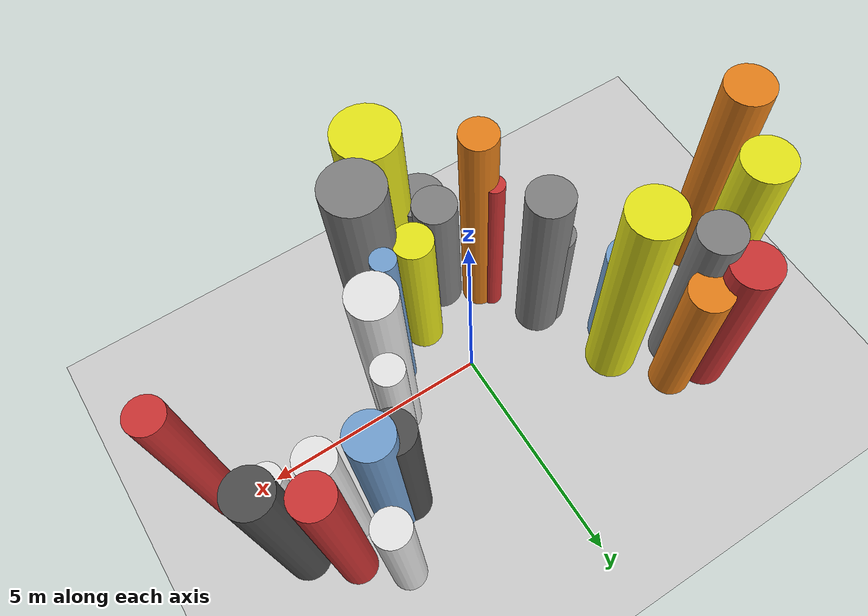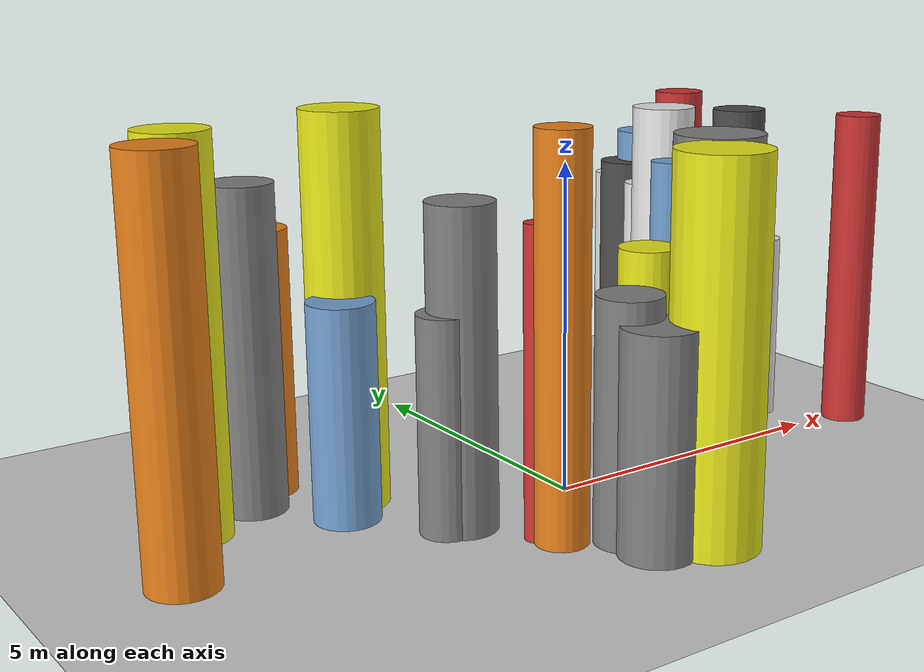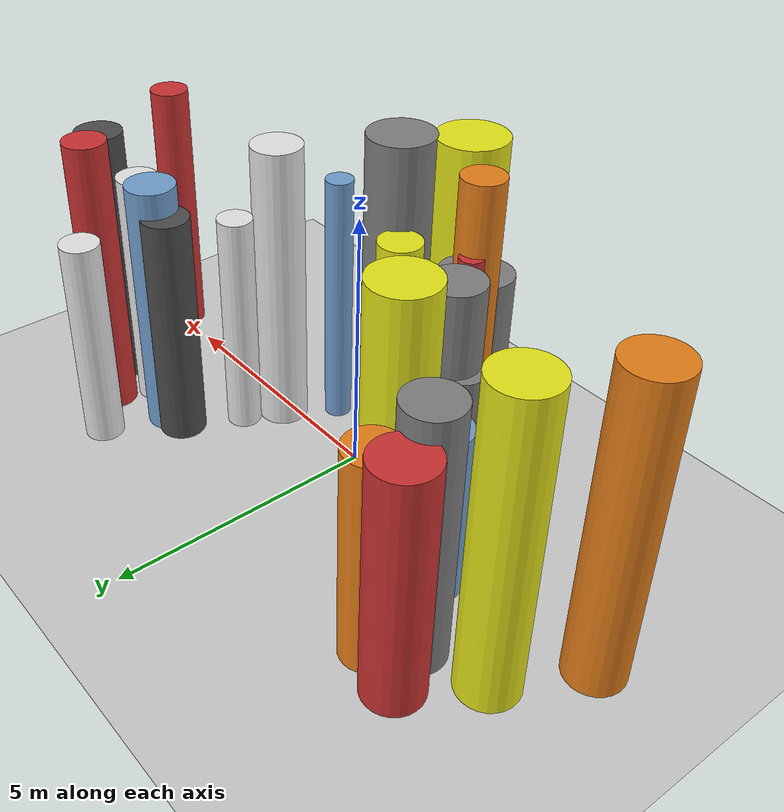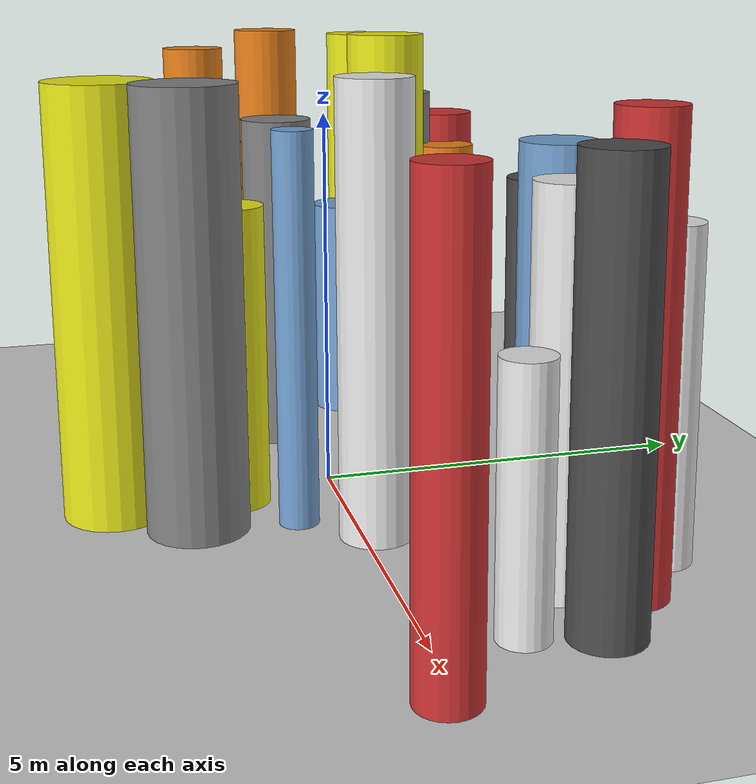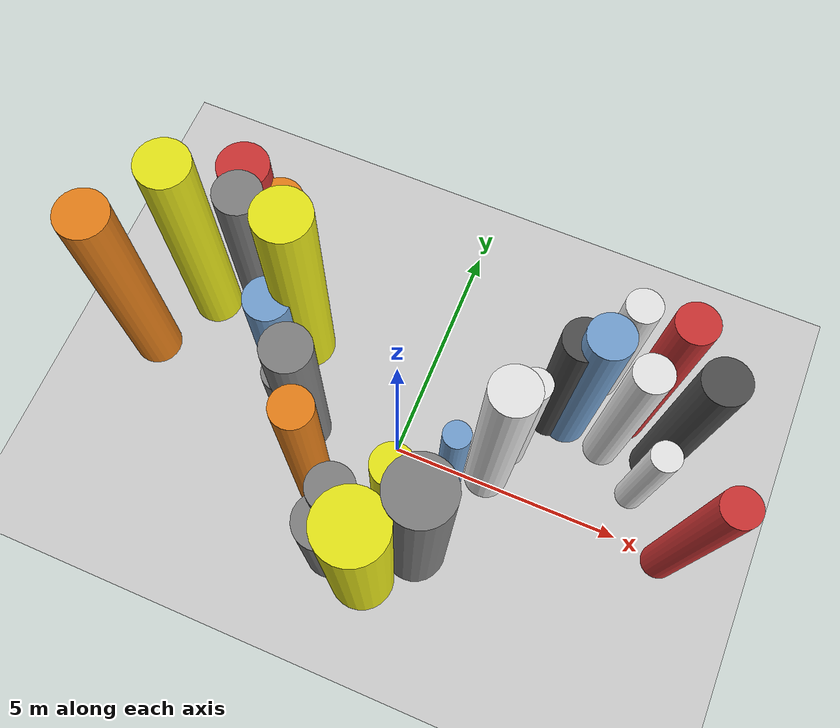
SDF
<?xml version='1.0'?>
<sdf version='1.6'>
  <world name='routeA_rl_v1__dense_recovery__rl_train__s_turn_multi_obstacle__000092'>
    <!-- Sun light -->
    <light name='sun' type='directional'>
      <cast_shadows>1</cast_shadows>
      <pose>0 0 10 0 0 0</pose>
      <diffuse>0.8 0.8 0.8 1</diffuse>
      <specular>0.2 0.2 0.2 1</specular>
      <attenuation>
        <range>1000</range>
        <constant>0.9</constant>
        <linear>0.01</linear>
        <quadratic>0.001</quadratic>
      </attenuation>
      <direction>-0.5 0.1 -0.9</direction>
    </light>

    <!-- Ground plane -->
    <model name='ground_plane'>
      <static>1</static>
      <link name='link'>
        <collision name='collision'>
          <geometry>
            <plane>
              <normal>0 0 1</normal>
              <size>100 100</size>
            </plane>
          </geometry>
          <surface>
            <contact>
              <collide_bitmask>65535</collide_bitmask>
              <ode/>
            </contact>
            <friction>
              <ode>
                <mu>100</mu>
                <mu2>50</mu2>
              </ode>
              <torsional><ode/></torsional>
            </friction>
            <bounce/>
          </surface>
          <max_contacts>10</max_contacts>
        </collision>
        <visual name='visual'>
          <cast_shadows>0</cast_shadows>
          <geometry>
            <plane>
              <normal>0 0 1</normal>
              <size>100 100</size>
            </plane>
          </geometry>
          <material>
            <script>
              <uri>file://media/materials/scripts/gazebo.material</uri>
              <n>Gazebo/Grey</n>
            </script>
          </material>
        </visual>
      </link>
    </model>

    <!-- Environment -->
    <magnetic_field>6e-06 2.3e-05 -4.2e-05</magnetic_field>
    <atmosphere type='adiabatic'/>
    <physics name='default_physics' default='0' type='ode'>
      <gravity>0 0 -9.8</gravity>
      <max_step_size>0.004</max_step_size>
      <real_time_factor>1</real_time_factor>
      <real_time_update_rate>250</real_time_update_rate>
    </physics>
    <scene>
      <ambient>0.4 0.4 0.4 1</ambient>
      <background>0.7 0.7 0.7 1</background>
      <shadows>1</shadows>
    </scene>
    <wind/>
    <spherical_coordinates>
      <surface_model>EARTH_WGS84</surface_model>
      <latitude_deg>0</latitude_deg>
      <longitude_deg>0</longitude_deg>
      <elevation>0</elevation>
      <heading_deg>0</heading_deg>
    </spherical_coordinates>

    <!-- ============ OBSTACLES (28) ============ -->
    <model name='s_turn_obs_0'>
      <static>1</static>
      <link name='link'>
        <visual name='visual'>
          <geometry>
            <cylinder>
              <radius>0.5152</radius>
              <length>5.7607</length>
            </cylinder>
          </geometry>
          <material>
            <script>
              <n>Gazebo/Orange</n>
              <uri>file://media/materials/scripts/gazebo.material</uri>
            </script>
            <ambient>0.9 0.5 0.1 1</ambient>
          </material>
        </visual>
        <collision name='collision'>
          <geometry>
            <cylinder>
              <radius>0.5152</radius>
              <length>5.7607</length>
            </cylinder>
          </geometry>
          <max_contacts>10</max_contacts>
          <surface>
            <contact><ode/></contact>
            <bounce/>
            <friction>
              <ode><mu>1</mu><mu2>1</mu2></ode>
              <torsional><ode/></torsional>
            </friction>
          </surface>
        </collision>
      </link>
      <pose>-6.0000 0.2590 2.8803 0 0 0.0000</pose>
    </model>

    <model name='s_turn_obs_1'>
      <static>1</static>
      <link name='link'>
        <visual name='visual'>
          <geometry>
            <cylinder>
              <radius>0.5351</radius>
              <length>5.7251</length>
            </cylinder>
          </geometry>
          <material>
            <script>
              <n>Gazebo/Yellow</n>
              <uri>file://media/materials/scripts/gazebo.material</uri>
            </script>
            <ambient>0.9 0.9 0.1 1</ambient>
          </material>
        </visual>
        <collision name='collision'>
          <geometry>
            <cylinder>
              <radius>0.5351</radius>
              <length>5.7251</length>
            </cylinder>
          </geometry>
          <max_contacts>10</max_contacts>
          <surface>
            <contact><ode/></contact>
            <bounce/>
            <friction>
              <ode><mu>1</mu><mu2>1</mu2></ode>
              <torsional><ode/></torsional>
            </friction>
          </surface>
        </collision>
      </link>
      <pose>-5.2000 1.7053 2.8626 0 0 0.0000</pose>
    </model>

    <model name='s_turn_obs_2'>
      <static>1</static>
      <link name='link'>
        <visual name='visual'>
          <geometry>
            <cylinder>
              <radius>0.5273</radius>
              <length>4.4724</length>
            </cylinder>
          </geometry>
          <material>
            <script>
              <n>Gazebo/Red</n>
              <uri>file://media/materials/scripts/gazebo.material</uri>
            </script>
            <ambient>0.8 0.2 0.2 1</ambient>
          </material>
        </visual>
        <collision name='collision'>
          <geometry>
            <cylinder>
              <radius>0.5273</radius>
              <length>4.4724</length>
            </cylinder>
          </geometry>
          <max_contacts>10</max_contacts>
          <surface>
            <contact><ode/></contact>
            <bounce/>
            <friction>
              <ode><mu>1</mu><mu2>1</mu2></ode>
              <torsional><ode/></torsional>
            </friction>
          </surface>
        </collision>
      </link>
      <pose>-4.4000 2.8658 2.2362 0 0 0.0000</pose>
    </model>

    <model name='s_turn_obs_3'>
      <static>1</static>
      <link name='link'>
        <visual name='visual'>
          <geometry>
            <cylinder>
              <radius>0.4620</radius>
              <length>4.0410</length>
            </cylinder>
          </geometry>
          <material>
            <script>
              <n>Gazebo/Orange</n>
              <uri>file://media/materials/scripts/gazebo.material</uri>
            </script>
            <ambient>0.9 0.5 0.1 1</ambient>
          </material>
        </visual>
        <collision name='collision'>
          <geometry>
            <cylinder>
              <radius>0.4620</radius>
              <length>4.0410</length>
            </cylinder>
          </geometry>
          <max_contacts>10</max_contacts>
          <surface>
            <contact><ode/></contact>
            <bounce/>
            <friction>
              <ode><mu>1</mu><mu2>1</mu2></ode>
              <torsional><ode/></torsional>
            </friction>
          </surface>
        </collision>
      </link>
      <pose>-3.6000 2.7082 2.0205 0 0 0.0000</pose>
    </model>

    <model name='s_turn_obs_4'>
      <static>1</static>
      <link name='link'>
        <visual name='visual'>
          <geometry>
            <cylinder>
              <radius>0.5715</radius>
              <length>5.8428</length>
            </cylinder>
          </geometry>
          <material>
            <script>
              <n>Gazebo/Yellow</n>
              <uri>file://media/materials/scripts/gazebo.material</uri>
            </script>
            <ambient>0.9 0.9 0.1 1</ambient>
          </material>
        </visual>
        <collision name='collision'>
          <geometry>
            <cylinder>
              <radius>0.5715</radius>
              <length>5.8428</length>
            </cylinder>
          </geometry>
          <max_contacts>10</max_contacts>
          <surface>
            <contact><ode/></contact>
            <bounce/>
            <friction>
              <ode><mu>1</mu><mu2>1</mu2></ode>
              <torsional><ode/></torsional>
            </friction>
          </surface>
        </collision>
      </link>
      <pose>-2.8000 1.5433 2.9214 0 0 0.0000</pose>
    </model>

    <model name='s_turn_obs_5'>
      <static>1</static>
      <link name='link'>
        <visual name='visual'>
          <geometry>
            <cylinder>
              <radius>0.4954</radius>
              <length>4.7161</length>
            </cylinder>
          </geometry>
          <material>
            <script>
              <n>Gazebo/Grey</n>
              <uri>file://media/materials/scripts/gazebo.material</uri>
            </script>
            <ambient>0.5 0.5 0.5 1</ambient>
          </material>
        </visual>
        <collision name='collision'>
          <geometry>
            <cylinder>
              <radius>0.4954</radius>
              <length>4.7161</length>
            </cylinder>
          </geometry>
          <max_contacts>10</max_contacts>
          <surface>
            <contact><ode/></contact>
            <bounce/>
            <friction>
              <ode><mu>1</mu><mu2>1</mu2></ode>
              <torsional><ode/></torsional>
            </friction>
          </surface>
        </collision>
      </link>
      <pose>-2.0000 -0.2810 2.3580 0 0 0.0000</pose>
    </model>

    <model name='s_turn_obs_6'>
      <static>1</static>
      <link name='link'>
        <visual name='visual'>
          <geometry>
            <cylinder>
              <radius>0.3901</radius>
              <length>5.7836</length>
            </cylinder>
          </geometry>
          <material>
            <script>
              <n>Gazebo/Orange</n>
              <uri>file://media/materials/scripts/gazebo.material</uri>
            </script>
            <ambient>0.9 0.5 0.1 1</ambient>
          </material>
        </visual>
        <collision name='collision'>
          <geometry>
            <cylinder>
              <radius>0.3901</radius>
              <length>5.7836</length>
            </cylinder>
          </geometry>
          <max_contacts>10</max_contacts>
          <surface>
            <contact><ode/></contact>
            <bounce/>
            <friction>
              <ode><mu>1</mu><mu2>1</mu2></ode>
              <torsional><ode/></torsional>
            </friction>
          </surface>
        </collision>
      </link>
      <pose>-1.2000 -1.5147 2.8918 0 0 0.0000</pose>
    </model>

    <model name='s_turn_obs_7'>
      <static>1</static>
      <link name='link'>
        <visual name='visual'>
          <geometry>
            <cylinder>
              <radius>0.5571</radius>
              <length>3.2257</length>
            </cylinder>
          </geometry>
          <material>
            <script>
              <n>Gazebo/Grey</n>
              <uri>file://media/materials/scripts/gazebo.material</uri>
            </script>
            <ambient>0.5 0.5 0.5 1</ambient>
          </material>
        </visual>
        <collision name='collision'>
          <geometry>
            <cylinder>
              <radius>0.5571</radius>
              <length>3.2257</length>
            </cylinder>
          </geometry>
          <max_contacts>10</max_contacts>
          <surface>
            <contact><ode/></contact>
            <bounce/>
            <friction>
              <ode><mu>1</mu><mu2>1</mu2></ode>
              <torsional><ode/></torsional>
            </friction>
          </surface>
        </collision>
      </link>
      <pose>-0.4000 -2.6023 1.6128 0 0 0.0000</pose>
    </model>

    <model name='s_turn_obs_8'>
      <static>1</static>
      <link name='link'>
        <visual name='visual'>
          <geometry>
            <cylinder>
              <radius>0.6738</radius>
              <length>5.5233</length>
            </cylinder>
          </geometry>
          <material>
            <script>
              <n>Gazebo/Yellow</n>
              <uri>file://media/materials/scripts/gazebo.material</uri>
            </script>
            <ambient>0.9 0.9 0.1 1</ambient>
          </material>
        </visual>
        <collision name='collision'>
          <geometry>
            <cylinder>
              <radius>0.6738</radius>
              <length>5.5233</length>
            </cylinder>
          </geometry>
          <max_contacts>10</max_contacts>
          <surface>
            <contact><ode/></contact>
            <bounce/>
            <friction>
              <ode><mu>1</mu><mu2>1</mu2></ode>
              <torsional><ode/></torsional>
            </friction>
          </surface>
        </collision>
      </link>
      <pose>0.4000 -2.8532 2.7616 0 0 0.0000</pose>
    </model>

    <model name='s_turn_obs_9'>
      <static>1</static>
      <link name='link'>
        <visual name='visual'>
          <geometry>
            <cylinder>
              <radius>0.6425</radius>
              <length>5.5411</length>
            </cylinder>
          </geometry>
          <material>
            <script>
              <n>Gazebo/Grey</n>
              <uri>file://media/materials/scripts/gazebo.material</uri>
            </script>
            <ambient>0.5 0.5 0.5 1</ambient>
          </material>
        </visual>
        <collision name='collision'>
          <geometry>
            <cylinder>
              <radius>0.6425</radius>
              <length>5.5411</length>
            </cylinder>
          </geometry>
          <max_contacts>10</max_contacts>
          <surface>
            <contact><ode/></contact>
            <bounce/>
            <friction>
              <ode><mu>1</mu><mu2>1</mu2></ode>
              <torsional><ode/></torsional>
            </friction>
          </surface>
        </collision>
      </link>
      <pose>1.2000 -1.9116 2.7705 0 0 0.0000</pose>
    </model>

    <model name='s_turn_obs_10'>
      <static>1</static>
      <link name='link'>
        <visual name='visual'>
          <geometry>
            <cylinder>
              <radius>0.4686</radius>
              <length>5.6386</length>
            </cylinder>
          </geometry>
          <material>
            <script>
              <n>Gazebo/White</n>
              <uri>file://media/materials/scripts/gazebo.material</uri>
            </script>
            <ambient>0.9 0.9 0.9 1</ambient>
          </material>
        </visual>
        <collision name='collision'>
          <geometry>
            <cylinder>
              <radius>0.4686</radius>
              <length>5.6386</length>
            </cylinder>
          </geometry>
          <max_contacts>10</max_contacts>
          <surface>
            <contact><ode/></contact>
            <bounce/>
            <friction>
              <ode><mu>1</mu><mu2>1</mu2></ode>
              <torsional><ode/></torsional>
            </friction>
          </surface>
        </collision>
      </link>
      <pose>2.0000 0.1821 2.8193 0 0 0.0000</pose>
    </model>

    <model name='s_turn_obs_11'>
      <static>1</static>
      <link name='link'>
        <visual name='visual'>
          <geometry>
            <cylinder>
              <radius>0.4381</radius>
              <length>4.5154</length>
            </cylinder>
          </geometry>
          <material>
            <script>
              <n>Gazebo/DarkGrey</n>
              <uri>file://media/materials/scripts/gazebo.material</uri>
            </script>
            <ambient>0.3 0.3 0.3 1</ambient>
          </material>
        </visual>
        <collision name='collision'>
          <geometry>
            <cylinder>
              <radius>0.4381</radius>
              <length>4.5154</length>
            </cylinder>
          </geometry>
          <max_contacts>10</max_contacts>
          <surface>
            <contact><ode/></contact>
            <bounce/>
            <friction>
              <ode><mu>1</mu><mu2>1</mu2></ode>
              <torsional><ode/></torsional>
            </friction>
          </surface>
        </collision>
      </link>
      <pose>2.8000 1.9869 2.2577 0 0 0.0000</pose>
    </model>

    <model name='s_turn_obs_12'>
      <static>1</static>
      <link name='link'>
        <visual name='visual'>
          <geometry>
            <cylinder>
              <radius>0.3640</radius>
              <length>4.0836</length>
            </cylinder>
          </geometry>
          <material>
            <script>
              <n>Gazebo/White</n>
              <uri>file://media/materials/scripts/gazebo.material</uri>
            </script>
            <ambient>0.9 0.9 0.9 1</ambient>
          </material>
        </visual>
        <collision name='collision'>
          <geometry>
            <cylinder>
              <radius>0.3640</radius>
              <length>4.0836</length>
            </cylinder>
          </geometry>
          <max_contacts>10</max_contacts>
          <surface>
            <contact><ode/></contact>
            <bounce/>
            <friction>
              <ode><mu>1</mu><mu2>1</mu2></ode>
              <torsional><ode/></torsional>
            </friction>
          </surface>
        </collision>
      </link>
      <pose>3.6000 3.2440 2.0418 0 0 0.0000</pose>
    </model>

    <model name='s_turn_obs_13'>
      <static>1</static>
      <link name='link'>
        <visual name='visual'>
          <geometry>
            <cylinder>
              <radius>0.4001</radius>
              <length>5.4988</length>
            </cylinder>
          </geometry>
          <material>
            <script>
              <n>Gazebo/Red</n>
              <uri>file://media/materials/scripts/gazebo.material</uri>
            </script>
            <ambient>0.8 0.2 0.2 1</ambient>
          </material>
        </visual>
        <collision name='collision'>
          <geometry>
            <cylinder>
              <radius>0.4001</radius>
              <length>5.4988</length>
            </cylinder>
          </geometry>
          <max_contacts>10</max_contacts>
          <surface>
            <contact><ode/></contact>
            <bounce/>
            <friction>
              <ode><mu>1</mu><mu2>1</mu2></ode>
              <torsional><ode/></torsional>
            </friction>
          </surface>
        </collision>
      </link>
      <pose>4.4000 2.5370 2.7494 0 0 0.0000</pose>
    </model>

    <model name='s_turn_obs_14'>
      <static>1</static>
      <link name='link'>
        <visual name='visual'>
          <geometry>
            <cylinder>
              <radius>0.4497</radius>
              <length>5.2007</length>
            </cylinder>
          </geometry>
          <material>
            <script>
              <n>Gazebo/DarkGrey</n>
              <uri>file://media/materials/scripts/gazebo.material</uri>
            </script>
            <ambient>0.3 0.3 0.3 1</ambient>
          </material>
        </visual>
        <collision name='collision'>
          <geometry>
            <cylinder>
              <radius>0.4497</radius>
              <length>5.2007</length>
            </cylinder>
          </geometry>
          <max_contacts>10</max_contacts>
          <surface>
            <contact><ode/></contact>
            <bounce/>
            <friction>
              <ode><mu>1</mu><mu2>1</mu2></ode>
              <torsional><ode/></torsional>
            </friction>
          </surface>
        </collision>
      </link>
      <pose>5.2000 1.8652 2.6004 0 0 0.0000</pose>
    </model>

    <model name='s_turn_obs_15'>
      <static>1</static>
      <link name='link'>
        <visual name='visual'>
          <geometry>
            <cylinder>
              <radius>0.3652</radius>
              <length>5.2457</length>
            </cylinder>
          </geometry>
          <material>
            <script>
              <n>Gazebo/Red</n>
              <uri>file://media/materials/scripts/gazebo.material</uri>
            </script>
            <ambient>0.8 0.2 0.2 1</ambient>
          </material>
        </visual>
        <collision name='collision'>
          <geometry>
            <cylinder>
              <radius>0.3652</radius>
              <length>5.2457</length>
            </cylinder>
          </geometry>
          <max_contacts>10</max_contacts>
          <surface>
            <contact><ode/></contact>
            <bounce/>
            <friction>
              <ode><mu>1</mu><mu2>1</mu2></ode>
              <torsional><ode/></torsional>
            </friction>
          </surface>
        </collision>
      </link>
      <pose>6.0000 -0.1260 2.6229 0 0 0.0000</pose>
    </model>

    <model name='s_turn_obs2_0'>
      <static>1</static>
      <link name='link'>
        <visual name='visual'>
          <geometry>
            <cylinder>
              <radius>0.2749</radius>
              <length>3.7197</length>
            </cylinder>
          </geometry>
          <material>
            <script>
              <n>Gazebo/Orange</n>
              <uri>file://media/materials/scripts/gazebo.material</uri>
            </script>
            <ambient>0.9 0.5 0.1 1</ambient>
          </material>
        </visual>
        <collision name='collision'>
          <geometry>
            <cylinder>
              <radius>0.2749</radius>
              <length>3.7197</length>
            </cylinder>
          </geometry>
          <max_contacts>10</max_contacts>
          <surface>
            <contact><ode/></contact>
            <bounce/>
            <friction>
              <ode><mu>1</mu><mu2>1</mu2></ode>
              <torsional><ode/></torsional>
            </friction>
          </surface>
        </collision>
      </link>
      <pose>-5.0000 1.6222 1.8599 0 0 0.0000</pose>
    </model>

    <model name='s_turn_obs2_1'>
      <static>1</static>
      <link name='link'>
        <visual name='visual'>
          <geometry>
            <cylinder>
              <radius>0.4860</radius>
              <length>4.8445</length>
            </cylinder>
          </geometry>
          <material>
            <script>
              <n>Gazebo/Grey</n>
              <uri>file://media/materials/scripts/gazebo.material</uri>
            </script>
            <ambient>0.5 0.5 0.5 1</ambient>
          </material>
        </visual>
        <collision name='collision'>
          <geometry>
            <cylinder>
              <radius>0.4860</radius>
              <length>4.8445</length>
            </cylinder>
          </geometry>
          <max_contacts>10</max_contacts>
          <surface>
            <contact><ode/></contact>
            <bounce/>
            <friction>
              <ode><mu>1</mu><mu2>1</mu2></ode>
              <torsional><ode/></torsional>
            </friction>
          </surface>
        </collision>
      </link>
      <pose>-4.0909 2.1104 2.4222 0 0 0.0000</pose>
    </model>

    <model name='s_turn_obs2_2'>
      <static>1</static>
      <link name='link'>
        <visual name='visual'>
          <geometry>
            <cylinder>
              <radius>0.4931</radius>
              <length>3.2380</length>
            </cylinder>
          </geometry>
          <material>
            <script>
              <n>Gazebo/Blue</n>
              <uri>file://media/materials/scripts/gazebo.material</uri>
            </script>
            <ambient>0.447 0.624 0.812 1</ambient>
          </material>
        </visual>
        <collision name='collision'>
          <geometry>
            <cylinder>
              <radius>0.4931</radius>
              <length>3.2380</length>
            </cylinder>
          </geometry>
          <max_contacts>10</max_contacts>
          <surface>
            <contact><ode/></contact>
            <bounce/>
            <friction>
              <ode><mu>1</mu><mu2>1</mu2></ode>
              <torsional><ode/></torsional>
            </friction>
          </surface>
        </collision>
      </link>
      <pose>-3.1818 0.9830 1.6190 0 0 0.0000</pose>
    </model>

    <model name='s_turn_obs2_3'>
      <static>1</static>
      <link name='link'>
        <visual name='visual'>
          <geometry>
            <cylinder>
              <radius>0.4041</radius>
              <length>3.1905</length>
            </cylinder>
          </geometry>
          <material>
            <script>
              <n>Gazebo/Grey</n>
              <uri>file://media/materials/scripts/gazebo.material</uri>
            </script>
            <ambient>0.5 0.5 0.5 1</ambient>
          </material>
        </visual>
        <collision name='collision'>
          <geometry>
            <cylinder>
              <radius>0.4041</radius>
              <length>3.1905</length>
            </cylinder>
          </geometry>
          <max_contacts>10</max_contacts>
          <surface>
            <contact><ode/></contact>
            <bounce/>
            <friction>
              <ode><mu>1</mu><mu2>1</mu2></ode>
              <torsional><ode/></torsional>
            </friction>
          </surface>
        </collision>
      </link>
      <pose>-2.2727 -0.2716 1.5953 0 0 0.0000</pose>
    </model>

    <model name='s_turn_obs2_4'>
      <static>1</static>
      <link name='link'>
        <visual name='visual'>
          <geometry>
            <cylinder>
              <radius>0.2195</radius>
              <length>4.4923</length>
            </cylinder>
          </geometry>
          <material>
            <script>
              <n>Gazebo/Red</n>
              <uri>file://media/materials/scripts/gazebo.material</uri>
            </script>
            <ambient>0.8 0.2 0.2 1</ambient>
          </material>
        </visual>
        <collision name='collision'>
          <geometry>
            <cylinder>
              <radius>0.2195</radius>
              <length>4.4923</length>
            </cylinder>
          </geometry>
          <max_contacts>10</max_contacts>
          <surface>
            <contact><ode/></contact>
            <bounce/>
            <friction>
              <ode><mu>1</mu><mu2>1</mu2></ode>
              <torsional><ode/></torsional>
            </friction>
          </surface>
        </collision>
      </link>
      <pose>-1.3636 -1.2192 2.2462 0 0 0.0000</pose>
    </model>

    <model name='s_turn_obs2_5'>
      <static>1</static>
      <link name='link'>
        <visual name='visual'>
          <geometry>
            <cylinder>
              <radius>0.4782</radius>
              <length>3.5415</length>
            </cylinder>
          </geometry>
          <material>
            <script>
              <n>Gazebo/Grey</n>
              <uri>file://media/materials/scripts/gazebo.material</uri>
            </script>
            <ambient>0.5 0.5 0.5 1</ambient>
          </material>
        </visual>
        <collision name='collision'>
          <geometry>
            <cylinder>
              <radius>0.4782</radius>
              <length>3.5415</length>
            </cylinder>
          </geometry>
          <max_contacts>10</max_contacts>
          <surface>
            <contact><ode/></contact>
            <bounce/>
            <friction>
              <ode><mu>1</mu><mu2>1</mu2></ode>
              <torsional><ode/></torsional>
            </friction>
          </surface>
        </collision>
      </link>
      <pose>-0.4545 -2.0267 1.7708 0 0 0.0000</pose>
    </model>

    <model name='s_turn_obs2_6'>
      <static>1</static>
      <link name='link'>
        <visual name='visual'>
          <geometry>
            <cylinder>
              <radius>0.4228</radius>
              <length>3.9405</length>
            </cylinder>
          </geometry>
          <material>
            <script>
              <n>Gazebo/Yellow</n>
              <uri>file://media/materials/scripts/gazebo.material</uri>
            </script>
            <ambient>0.9 0.9 0.1 1</ambient>
          </material>
        </visual>
        <collision name='collision'>
          <geometry>
            <cylinder>
              <radius>0.4228</radius>
              <length>3.9405</length>
            </cylinder>
          </geometry>
          <max_contacts>10</max_contacts>
          <surface>
            <contact><ode/></contact>
            <bounce/>
            <friction>
              <ode><mu>1</mu><mu2>1</mu2></ode>
              <torsional><ode/></torsional>
            </friction>
          </surface>
        </collision>
      </link>
      <pose>0.4545 -1.3114 1.9702 0 0 0.0000</pose>
    </model>

    <model name='s_turn_obs2_7'>
      <static>1</static>
      <link name='link'>
        <visual name='visual'>
          <geometry>
            <cylinder>
              <radius>0.2535</radius>
              <length>4.9791</length>
            </cylinder>
          </geometry>
          <material>
            <script>
              <n>Gazebo/Blue</n>
              <uri>file://media/materials/scripts/gazebo.material</uri>
            </script>
            <ambient>0.447 0.624 0.812 1</ambient>
          </material>
        </visual>
        <collision name='collision'>
          <geometry>
            <cylinder>
              <radius>0.2535</radius>
              <length>4.9791</length>
            </cylinder>
          </geometry>
          <max_contacts>10</max_contacts>
          <surface>
            <contact><ode/></contact>
            <bounce/>
            <friction>
              <ode><mu>1</mu><mu2>1</mu2></ode>
              <torsional><ode/></torsional>
            </friction>
          </surface>
        </collision>
      </link>
      <pose>1.3636 -0.6716 2.4896 0 0 0.0000</pose>
    </model>

    <model name='s_turn_obs2_8'>
      <static>1</static>
      <link name='link'>
        <visual name='visual'>
          <geometry>
            <cylinder>
              <radius>0.3223</radius>
              <length>4.3558</length>
            </cylinder>
          </geometry>
          <material>
            <script>
              <n>Gazebo/White</n>
              <uri>file://media/materials/scripts/gazebo.material</uri>
            </script>
            <ambient>0.9 0.9 0.9 1</ambient>
          </material>
        </visual>
        <collision name='collision'>
          <geometry>
            <cylinder>
              <radius>0.3223</radius>
              <length>4.3558</length>
            </cylinder>
          </geometry>
          <max_contacts>10</max_contacts>
          <surface>
            <contact><ode/></contact>
            <bounce/>
            <friction>
              <ode><mu>1</mu><mu2>1</mu2></ode>
              <torsional><ode/></torsional>
            </friction>
          </surface>
        </collision>
      </link>
      <pose>2.2727 0.9176 2.1779 0 0 0.0000</pose>
    </model>

    <model name='s_turn_obs2_9'>
      <static>1</static>
      <link name='link'>
        <visual name='visual'>
          <geometry>
            <cylinder>
              <radius>0.4543</radius>
              <length>4.9867</length>
            </cylinder>
          </geometry>
          <material>
            <script>
              <n>Gazebo/Blue</n>
              <uri>file://media/materials/scripts/gazebo.material</uri>
            </script>
            <ambient>0.447 0.624 0.812 1</ambient>
          </material>
        </visual>
        <collision name='collision'>
          <geometry>
            <cylinder>
              <radius>0.4543</radius>
              <length>4.9867</length>
            </cylinder>
          </geometry>
          <max_contacts>10</max_contacts>
          <surface>
            <contact><ode/></contact>
            <bounce/>
            <friction>
              <ode><mu>1</mu><mu2>1</mu2></ode>
              <torsional><ode/></torsional>
            </friction>
          </surface>
        </collision>
      </link>
      <pose>3.1818 2.0009 2.4933 0 0 0.0000</pose>
    </model>

    <model name='s_turn_obs2_10'>
      <static>1</static>
      <link name='link'>
        <visual name='visual'>
          <geometry>
            <cylinder>
              <radius>0.3869</radius>
              <length>4.6973</length>
            </cylinder>
          </geometry>
          <material>
            <script>
              <n>Gazebo/White</n>
              <uri>file://media/materials/scripts/gazebo.material</uri>
            </script>
            <ambient>0.9 0.9 0.9 1</ambient>
          </material>
        </visual>
        <collision name='collision'>
          <geometry>
            <cylinder>
              <radius>0.3869</radius>
              <length>4.6973</length>
            </cylinder>
          </geometry>
          <max_contacts>10</max_contacts>
          <surface>
            <contact><ode/></contact>
            <bounce/>
            <friction>
              <ode><mu>1</mu><mu2>1</mu2></ode>
              <torsional><ode/></torsional>
            </friction>
          </surface>
        </collision>
      </link>
      <pose>4.0909 1.7580 2.3486 0 0 0.0000</pose>
    </model>

    <model name='s_turn_obs2_11'>
      <static>1</static>
      <link name='link'>
        <visual name='visual'>
          <geometry>
            <cylinder>
              <radius>0.3130</radius>
              <length>3.0950</length>
            </cylinder>
          </geometry>
          <material>
            <script>
              <n>Gazebo/White</n>
              <uri>file://media/materials/scripts/gazebo.material</uri>
            </script>
            <ambient>0.9 0.9 0.9 1</ambient>
          </material>
        </visual>
        <collision name='collision'>
          <geometry>
            <cylinder>
              <radius>0.3130</radius>
              <length>3.0950</length>
            </cylinder>
          </geometry>
          <max_contacts>10</max_contacts>
          <surface>
            <contact><ode/></contact>
            <bounce/>
            <friction>
              <ode><mu>1</mu><mu2>1</mu2></ode>
              <torsional><ode/></torsional>
            </friction>
          </surface>
        </collision>
      </link>
      <pose>5.0000 1.0074 1.5475 0 0 0.0000</pose>
    </model>

    <!-- GUI camera -->
    <gui fullscreen='0'>
      <camera name='user_camera'>
        <pose>-15 0 18 0 0.85 0.15</pose>
        <view_controller>orbit</view_controller>
        <projection_type>perspective</projection_type>
      </camera>
    </gui>
  </world>
</sdf>
